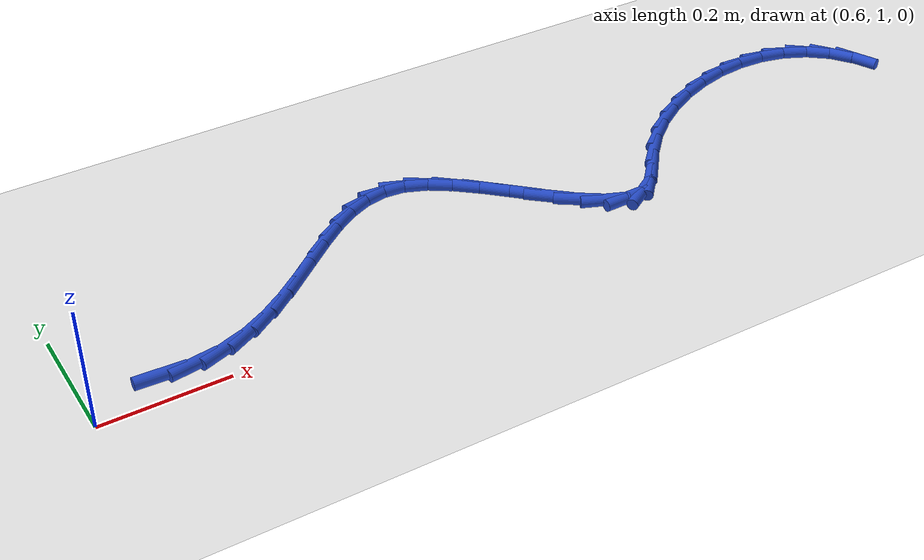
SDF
<sdf version="1.6">
 <world name="default">
  <model name="ground_plane">
   <static>1</static>
   <link name="link">
    <collision name="collision">
     <geometry><plane><normal>0 0 1</normal><size>100 100</size></plane></geometry>
     <surface><friction><ode><mu>100</mu><mu2>50</mu2></ode></friction></surface>
    </collision>
    <visual name="visual">
     <cast_shadows>0</cast_shadows>
     <geometry><plane><normal>0 0 1</normal><size>100 100</size></plane></geometry>
     <material>
      <script><uri>file://media/materials/scripts/gazebo.material</uri><name>Gazebo/WhiteGlow</name></script>
     </material>
    </visual>
   </link>
  </model>
  <model name="line">
   <link name="link_44">
    <pose>0.7109118809640993 1.0429124280729325 0.01 0 1.57 -0.05057437768826072</pose>
    <collision name="collision">
     <geometry><cylinder><radius>0.01</radius><length>0.08</length></cylinder></geometry>
    </collision>
    <visual name="visual">
     <material>
      <script><name>Gazebo/Blue</name><uri>file://media/materials/scripts/gazebo.material</uri></script>
     </material>
     <geometry><cylinder><radius>0.01</radius><length>0.08</length></cylinder></geometry>
    </visual>
   </link>
   <link name="link_45">
    <pose>0.7598663883147128 1.0404344712890456 0.01 0 1.57 0.14530475534830586</pose>
    <collision name="collision">
     <geometry><cylinder><radius>0.01</radius><length>0.08</length></cylinder></geometry>
    </collision>
    <visual name="visual">
     <material>
      <script><name>Gazebo/Blue</name><uri>file://media/materials/scripts/gazebo.material</uri></script>
     </material>
     <geometry><cylinder><radius>0.01</radius><length>0.08</length></cylinder></geometry>
    </visual>
   </link>
   <link name="link_46">
    <pose>0.8063640251267281 1.047238753914048 0.01 0 1.57 0.3374678605947326</pose>
    <collision name="collision">
     <geometry><cylinder><radius>0.01</radius><length>0.08</length></cylinder></geometry>
    </collision>
    <visual name="visual">
     <material>
      <script><name>Gazebo/Blue</name><uri>file://media/materials/scripts/gazebo.material</uri></script>
     </material>
     <geometry><cylinder><radius>0.01</radius><length>0.08</length></cylinder></geometry>
    </visual>
   </link>
   <link name="link_47">
    <pose>0.8502446068547291 1.062636030372734 0.01 0 1.57 0.4883731171705176</pose>
    <collision name="collision">
     <geometry><cylinder><radius>0.01</radius><length>0.08</length></cylinder></geometry>
    </collision>
    <visual name="visual">
     <material>
      <script><name>Gazebo/Blue</name><uri>file://media/materials/scripts/gazebo.material</uri></script>
     </material>
     <geometry><cylinder><radius>0.01</radius><length>0.08</length></cylinder></geometry>
    </visual>
   </link>
   <link name="link_48">
    <pose>0.8918339672789984 1.0847324667522746 0.01 0 1.57 0.5962434858115848</pose>
    <collision name="collision">
     <geometry><cylinder><radius>0.01</radius><length>0.08</length></cylinder></geometry>
    </collision>
    <visual name="visual">
     <material>
      <script><name>Gazebo/Blue</name><uri>file://media/materials/scripts/gazebo.material</uri></script>
     </material>
     <geometry><cylinder><radius>0.01</radius><length>0.08</length></cylinder></geometry>
    </visual>
   </link>
   <link name="link_49">
    <pose>0.9314615828141208 1.1116252009313001 0.01 0 1.57 0.6648728457711238</pose>
    <collision name="collision">
     <geometry><cylinder><radius>0.01</radius><length>0.08</length></cylinder></geometry>
    </collision>
    <visual name="visual">
     <material>
      <script><name>Gazebo/Blue</name><uri>file://media/materials/scripts/gazebo.material</uri></script>
     </material>
     <geometry><cylinder><radius>0.01</radius><length>0.08</length></cylinder></geometry>
    </visual>
   </link>
   <link name="link_50">
    <pose>0.9694569298746816 1.141411370788442 0.01 0 1.57 0.6979402985430583</pose>
    <collision name="collision">
     <geometry><cylinder><radius>0.01</radius><length>0.08</length></cylinder></geometry>
    </collision>
    <visual name="visual">
     <material>
      <script><name>Gazebo/Blue</name><uri>file://media/materials/scripts/gazebo.material</uri></script>
     </material>
     <geometry><cylinder><radius>0.01</radius><length>0.08</length></cylinder></geometry>
    </visual>
   </link>
   <link name="link_51">
    <pose>1.0061494848752657 1.17218811420233 0.01 0 1.57 0.6963622326337171</pose>
    <collision name="collision">
     <geometry><cylinder><radius>0.01</radius><length>0.08</length></cylinder></geometry>
    </collision>
    <visual name="visual">
     <material>
      <script><name>Gazebo/Blue</name><uri>file://media/materials/scripts/gazebo.material</uri></script>
     </material>
     <geometry><cylinder><radius>0.01</radius><length>0.08</length></cylinder></geometry>
    </visual>
   </link>
   <link name="link_52">
    <pose>1.0418687242304585 1.2020525690515962 0.01 0 1.57 0.6569165279694982</pose>
    <collision name="collision">
     <geometry><cylinder><radius>0.01</radius><length>0.08</length></cylinder></geometry>
    </collision>
    <visual name="visual">
     <material>
      <script><name>Gazebo/Blue</name><uri>file://media/materials/scripts/gazebo.material</uri></script>
     </material>
     <geometry><cylinder><radius>0.01</radius><length>0.08</length></cylinder></geometry>
    </visual>
   </link>
   <link name="link_53">
    <pose>1.0769441243548448 1.2291018732148702 0.01 0 1.57 0.571030258077261</pose>
    <collision name="collision">
     <geometry><cylinder><radius>0.01</radius><length>0.08</length></cylinder></geometry>
    </collision>
    <visual name="visual">
     <material>
      <script><name>Gazebo/Blue</name><uri>file://media/materials/scripts/gazebo.material</uri></script>
     </material>
     <geometry><cylinder><radius>0.01</radius><length>0.08</length></cylinder></geometry>
    </visual>
   </link>
   <link name="link_54">
    <pose>1.1117051616630098 1.251433164570783 0.01 0 1.57 0.4243152058732019</pose>
    <collision name="collision">
     <geometry><cylinder><radius>0.01</radius><length>0.08</length></cylinder></geometry>
    </collision>
    <visual name="visual">
     <material>
      <script><name>Gazebo/Blue</name><uri>file://media/materials/scripts/gazebo.material</uri></script>
     </material>
     <geometry><cylinder><radius>0.01</radius><length>0.08</length></cylinder></geometry>
    </visual>
   </link>
   <link name="link_55">
    <pose>1.146481312569539 1.2671435809979656 0.01 0 1.57 0.20184136599219352</pose>
    <collision name="collision">
     <geometry><cylinder><radius>0.01</radius><length>0.08</length></cylinder></geometry>
    </collision>
    <visual name="visual">
     <material>
      <script><name>Gazebo/Blue</name><uri>file://media/materials/scripts/gazebo.material</uri></script>
     </material>
     <geometry><cylinder><radius>0.01</radius><length>0.08</length></cylinder></geometry>
    </visual>
   </link>
   <link name="link_56">
    <pose>1.1816020534890168 1.2743302603750486 0.01 0 1.57 -0.09026770496880204</pose>
    <collision name="collision">
     <geometry><cylinder><radius>0.01</radius><length>0.08</length></cylinder></geometry>
    </collision>
    <visual name="visual">
     <material>
      <script><name>Gazebo/Blue</name><uri>file://media/materials/scripts/gazebo.material</uri></script>
     </material>
     <geometry><cylinder><radius>0.01</radius><length>0.08</length></cylinder></geometry>
    </visual>
   </link>
   <link name="link_57">
    <pose>1.217396860836029 1.2710903405806628 0.01 0 1.57 -0.3928688101757151</pose>
    <collision name="collision">
     <geometry><cylinder><radius>0.01</radius><length>0.08</length></cylinder></geometry>
    </collision>
    <visual name="visual">
     <material>
      <script><name>Gazebo/Blue</name><uri>file://media/materials/scripts/gazebo.material</uri></script>
     </material>
     <geometry><cylinder><radius>0.01</radius><length>0.08</length></cylinder></geometry>
    </visual>
   </link>
   <link name="link_58">
    <pose>1.2541467717845567 1.2558607208425892 0.01 0 1.57 -0.5974404741642019</pose>
    <collision name="collision">
     <geometry><cylinder><radius>0.01</radius><length>0.08</length></cylinder></geometry>
    </collision>
    <visual name="visual">
     <material>
      <script><name>Gazebo/Blue</name><uri>file://media/materials/scripts/gazebo.material</uri></script>
     </material>
     <geometry><cylinder><radius>0.01</radius><length>0.08</length></cylinder></geometry>
    </visual>
   </link>
   <link name="link_59">
    <pose>1.291669081027029 1.2303310716795635 0.01 0 1.57 -0.7068672895988576</pose>
    <collision name="collision">
     <geometry><cylinder><radius>0.01</radius><length>0.08</length></cylinder></geometry>
    </collision>
    <visual name="visual">
     <material>
      <script><name>Gazebo/Blue</name><uri>file://media/materials/scripts/gazebo.material</uri></script>
     </material>
     <geometry><cylinder><radius>0.01</radius><length>0.08</length></cylinder></geometry>
    </visual>
   </link>
   <link name="link_60">
    <pose>1.329523181777575 1.1980000299178448 0.01 0 1.57 -0.7563951312689297</pose>
    <collision name="collision">
     <geometry><cylinder><radius>0.01</radius><length>0.08</length></cylinder></geometry>
    </collision>
    <visual name="visual">
     <material>
      <script><name>Gazebo/Blue</name><uri>file://media/materials/scripts/gazebo.material</uri></script>
     </material>
     <geometry><cylinder><radius>0.01</radius><length>0.08</length></cylinder></geometry>
    </visual>
   </link>
   <link name="link_61">
    <pose>1.367265693791644 1.162385685910472 0.01 0 1.57 -0.7604886217314138</pose>
    <collision name="collision">
     <geometry><cylinder><radius>0.01</radius><length>0.08</length></cylinder></geometry>
    </collision>
    <visual name="visual">
     <material>
      <script><name>Gazebo/Blue</name><uri>file://media/materials/scripts/gazebo.material</uri></script>
     </material>
     <geometry><cylinder><radius>0.01</radius><length>0.08</length></cylinder></geometry>
    </visual>
   </link>
   <link name="link_62">
    <pose>1.4044532368246825 1.127006130010484 0.01 0 1.57 -0.7182213933987966</pose>
    <collision name="collision">
     <geometry><cylinder><radius>0.01</radius><length>0.08</length></cylinder></geometry>
    </collision>
    <visual name="visual">
     <material>
      <script><name>Gazebo/Blue</name><uri>file://media/materials/scripts/gazebo.material</uri></script>
     </material>
     <geometry><cylinder><radius>0.01</radius><length>0.08</length></cylinder></geometry>
    </visual>
   </link>
   <link name="link_63">
    <pose>1.4406424306321381 1.0953794525709195 0.01 0 1.57 -0.6113531034926124</pose>
    <collision name="collision">
     <geometry><cylinder><radius>0.01</radius><length>0.08</length></cylinder></geometry>
    </collision>
    <visual name="visual">
     <material>
      <script><name>Gazebo/Blue</name><uri>file://media/materials/scripts/gazebo.material</uri></script>
     </material>
     <geometry><cylinder><radius>0.01</radius><length>0.08</length></cylinder></geometry>
    </visual>
   </link>
   <link name="link_64">
    <pose>1.475389894969458 1.0710237439448176 0.01 0 1.57 -0.3915197334691016</pose>
    <collision name="collision">
     <geometry><cylinder><radius>0.01</radius><length>0.08</length></cylinder></geometry>
    </collision>
    <visual name="visual">
     <material>
      <script><name>Gazebo/Blue</name><uri>file://media/materials/scripts/gazebo.material</uri></script>
     </material>
     <geometry><cylinder><radius>0.01</radius><length>0.08</length></cylinder></geometry>
    </visual>
   </link>
   <link name="link_65">
    <pose>1.50825224959209 1.0574570944852166 0.01 0 1.57 0.02424701048360126</pose>
    <collision name="collision">
     <geometry><cylinder><radius>0.01</radius><length>0.08</length></cylinder></geometry>
    </collision>
    <visual name="visual">
     <material>
      <script><name>Gazebo/Blue</name><uri>file://media/materials/scripts/gazebo.material</uri></script>
     </material>
     <geometry><cylinder><radius>0.01</radius><length>0.08</length></cylinder></geometry>
    </visual>
   </link>
   <link name="link_66">
    <pose>1.5387861142554813 1.0581975945451552 0.01 0 1.57 0.567214867202811</pose>
    <collision name="collision">
     <geometry><cylinder><radius>0.01</radius><length>0.08</length></cylinder></geometry>
    </collision>
    <visual name="visual">
     <material>
      <script><name>Gazebo/Blue</name><uri>file://media/materials/scripts/gazebo.material</uri></script>
     </material>
     <geometry><cylinder><radius>0.01</radius><length>0.08</length></cylinder></geometry>
    </visual>
   </link>
   <link name="link_67">
    <pose>1.5667709042136324 1.076025197668674 0.01 0 1.57 0.853590785954401</pose>
    <collision name="collision">
     <geometry><cylinder><radius>0.01</radius><length>0.08</length></cylinder></geometry>
    </collision>
    <visual name="visual">
     <material>
      <script><name>Gazebo/Blue</name><uri>file://media/materials/scripts/gazebo.material</uri></script>
     </material>
     <geometry><cylinder><radius>0.01</radius><length>0.08</length></cylinder></geometry>
    </visual>
   </link>
   <link name="link_68">
    <pose>1.5939553986205288 1.1071952193603174 0.01 0 1.57 0.9081209353734886</pose>
    <collision name="collision">
     <geometry><cylinder><radius>0.01</radius><length>0.08</length></cylinder></geometry>
    </collision>
    <visual name="visual">
     <material>
      <script><name>Gazebo/Blue</name><uri>file://media/materials/scripts/gazebo.material</uri></script>
     </material>
     <geometry><cylinder><radius>0.01</radius><length>0.08</length></cylinder></geometry>
    </visual>
   </link>
   <link name="link_69">
    <pose>1.6231153425631857 1.1445605663610754 0.01 0 1.57 0.8265201986223273</pose>
    <collision name="collision">
     <geometry><cylinder><radius>0.01</radius><length>0.08</length></cylinder></geometry>
    </collision>
    <visual name="visual">
     <material>
      <script><name>Gazebo/Blue</name><uri>file://media/materials/scripts/gazebo.material</uri></script>
     </material>
     <geometry><cylinder><radius>0.01</radius><length>0.08</length></cylinder></geometry>
    </visual>
   </link>
   <link name="link_70">
    <pose>1.6568746074022889 1.1812171056814356 0.01 0 1.57 0.7003595160909006</pose>
    <collision name="collision">
     <geometry><cylinder><radius>0.01</radius><length>0.08</length></cylinder></geometry>
    </collision>
    <visual name="visual">
     <material>
      <script><name>Gazebo/Blue</name><uri>file://media/materials/scripts/gazebo.material</uri></script>
     </material>
     <geometry><cylinder><radius>0.01</radius><length>0.08</length></cylinder></geometry>
    </visual>
   </link>
   <link name="link_71">
    <pose>1.6956891644969552 1.213934017785807 0.01 0 1.57 0.5826060441259663</pose>
    <collision name="collision">
     <geometry><cylinder><radius>0.01</radius><length>0.08</length></cylinder></geometry>
    </collision>
    <visual name="visual">
     <material>
      <script><name>Gazebo/Blue</name><uri>file://media/materials/scripts/gazebo.material</uri></script>
     </material>
     <geometry><cylinder><radius>0.01</radius><length>0.08</length></cylinder></geometry>
    </visual>
   </link>
   <link name="link_72">
    <pose>1.7384598159783882 1.242115578873599 0.01 0 1.57 0.46909349959408997</pose>
    <collision name="collision">
     <geometry><cylinder><radius>0.01</radius><length>0.08</length></cylinder></geometry>
    </collision>
    <visual name="visual">
     <material>
      <script><name>Gazebo/Blue</name><uri>file://media/materials/scripts/gazebo.material</uri></script>
     </material>
     <geometry><cylinder><radius>0.01</radius><length>0.08</length></cylinder></geometry>
    </visual>
   </link>
   <link name="link_73">
    <pose>1.784053409353 1.2652235982315279 0.01 0 1.57 0.35440661868051127</pose>
    <collision name="collision">
     <geometry><cylinder><radius>0.01</radius><length>0.08</length></cylinder></geometry>
    </collision>
    <visual name="visual">
     <material>
      <script><name>Gazebo/Blue</name><uri>file://media/materials/scripts/gazebo.material</uri></script>
     </material>
     <geometry><cylinder><radius>0.01</radius><length>0.08</length></cylinder></geometry>
    </visual>
   </link>
   <link name="link_74">
    <pose>1.8313367921272046 1.282719885146312 0.01 0 1.57 0.23287029272252555</pose>
    <collision name="collision">
     <geometry><cylinder><radius>0.01</radius><length>0.08</length></cylinder></geometry>
    </collision>
    <visual name="visual">
     <material>
      <script><name>Gazebo/Blue</name><uri>file://media/materials/scripts/gazebo.material</uri></script>
     </material>
     <geometry><cylinder><radius>0.01</radius><length>0.08</length></cylinder></geometry>
    </visual>
   </link>
   <link name="link_75">
    <pose>1.8791768118074121 1.2940662489046675 0.01 0 1.57 0.09824184688303902</pose>
    <collision name="collision">
     <geometry><cylinder><radius>0.01</radius><length>0.08</length></cylinder></geometry>
    </collision>
    <visual name="visual">
     <material>
      <script><name>Gazebo/Blue</name><uri>file://media/materials/scripts/gazebo.material</uri></script>
     </material>
     <geometry><cylinder><radius>0.01</radius><length>0.08</length></cylinder></geometry>
    </visual>
   </link>
   <link name="link_76">
    <pose>1.9264403159000378 1.2987244987933122 0.01 0 1.57 -0.056314454259459926</pose>
    <collision name="collision">
     <geometry><cylinder><radius>0.01</radius><length>0.08</length></cylinder></geometry>
    </collision>
    <visual name="visual">
     <material>
      <script><name>Gazebo/Blue</name><uri>file://media/materials/scripts/gazebo.material</uri></script>
     </material>
     <geometry><cylinder><radius>0.01</radius><length>0.08</length></cylinder></geometry>
    </visual>
   </link>
   <link name="link_77">
    <pose>1.971994151911492 1.2961564440989635 0.01 0 1.57 -0.23735743251210276</pose>
    <collision name="collision">
     <geometry><cylinder><radius>0.01</radius><length>0.08</length></cylinder></geometry>
    </collision>
    <visual name="visual">
     <material>
      <script><name>Gazebo/Blue</name><uri>file://media/materials/scripts/gazebo.material</uri></script>
     </material>
     <geometry><cylinder><radius>0.01</radius><length>0.08</length></cylinder></geometry>
    </visual>
   </link>
   <link name="link_78">
    <pose>2.014705167348189 1.2858238941083382 0.01 0 1.57 -0.4484095660053678</pose>
    <collision name="collision">
     <geometry><cylinder><radius>0.01</radius><length>0.08</length></cylinder></geometry>
    </collision>
    <visual name="visual">
     <material>
      <script><name>Gazebo/Blue</name><uri>file://media/materials/scripts/gazebo.material</uri></script>
     </material>
     <geometry><cylinder><radius>0.01</radius><length>0.08</length></cylinder></geometry>
    </visual>
   </link>
   <link name="link_79">
    <pose>2.0534402097165394 1.2671886581081537 0.01 0 1.57 -0.6850878543346153</pose>
    <collision name="collision">
     <geometry><cylinder><radius>0.01</radius><length>0.08</length></cylinder></geometry>
    </collision>
    <visual name="visual">
     <material>
      <script><name>Gazebo/Blue</name><uri>file://media/materials/scripts/gazebo.material</uri></script>
     </material>
     <geometry><cylinder><radius>0.01</radius><length>0.08</length></cylinder></geometry>
    </visual>
   </link>
   <link name="link_80">
    <pose>2.0870661265229566 1.2397125453851263 0.01 0 1.57 -0.9303681591934165</pose>
    <collision name="collision">
     <geometry><cylinder><radius>0.01</radius><length>0.08</length></cylinder></geometry>
    </collision>
    <visual name="visual">
     <material>
      <script><name>Gazebo/Blue</name><uri>file://media/materials/scripts/gazebo.material</uri></script>
     </material>
     <geometry><cylinder><radius>0.01</radius><length>0.08</length></cylinder></geometry>
    </visual>
   </link>
   <link name="link_81">
    <pose>2.1144934545787817 1.202907692473142 0.01 0 1.57 -1.1359588045288331</pose>
    <collision name="collision">
     <geometry><cylinder><radius>0.01</radius><length>0.08</length></cylinder></geometry>
    </collision>
    <visual name="visual">
     <material>
      <script><name>Gazebo/Blue</name><uri>file://media/materials/scripts/gazebo.material</uri></script>
     </material>
     <geometry><cylinder><radius>0.01</radius><length>0.08</length></cylinder></geometry>
    </visual>
   </link>
  </model>
 </world>
</sdf>
